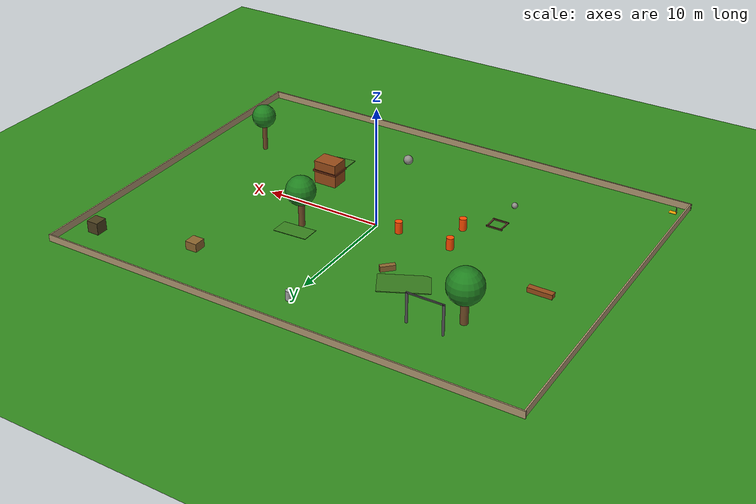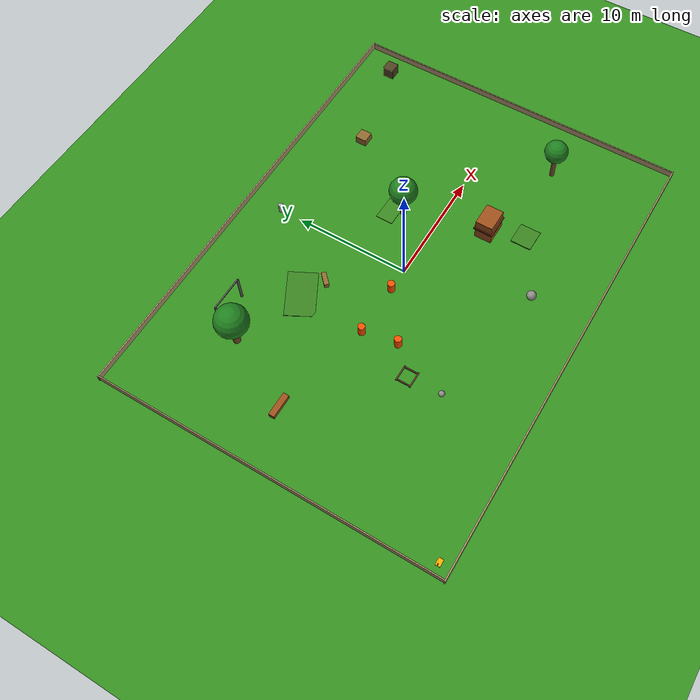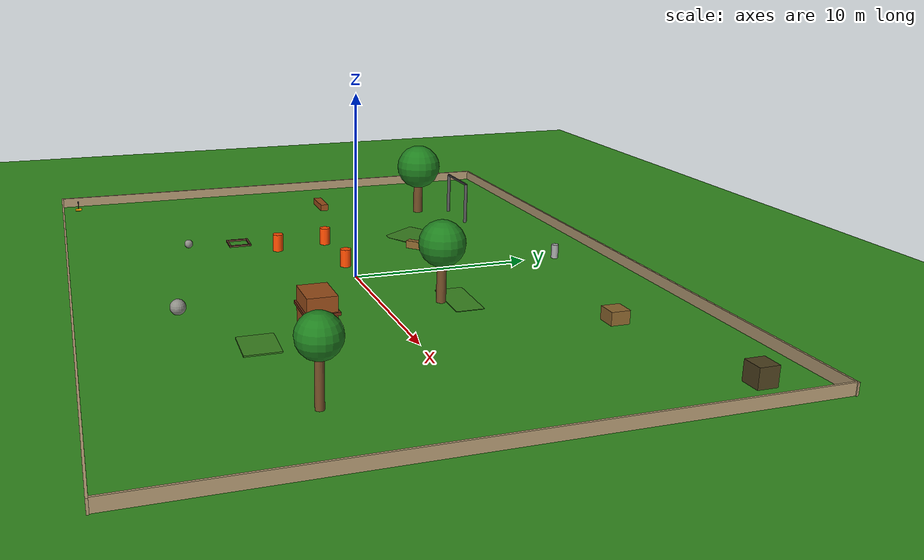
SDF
<?xml version="1.0"?>
<sdf version="1.9">
  <world name="garden">

    <!-- ================================================================
         Physics
         ================================================================ -->
    <physics name="default_physics" default="true" type="ode">
      <max_step_size>0.001</max_step_size>
      <real_time_factor>1.0</real_time_factor>
      <real_time_update_rate>1000</real_time_update_rate>
      <ode>
        <solver>
          <type>quick</type>
          <iters>150</iters>
          <sor>1.4</sor>
        </solver>
        <constraints>
          <cfm>0.0</cfm>
          <erp>0.2</erp>
          <contact_max_correcting_vel>10.0</contact_max_correcting_vel>
          <contact_surface_layer>0.001</contact_surface_layer>
        </constraints>
      </ode>
    </physics>

    <!-- ================================================================
         Required Ignition Fortress plugins
         ================================================================ -->
    <plugin filename="gz-sim-physics-system"
            name="gz::sim::systems::Physics"/>

    <plugin filename="gz-sim-user-commands-system"
            name="gz::sim::systems::UserCommands"/>

    <plugin filename="gz-sim-scene-broadcaster-system"
            name="gz::sim::systems::SceneBroadcaster"/>

    <plugin filename="gz-sim-contact-system"
            name="gz::sim::systems::Contact"/>

    <plugin filename="gz-sim-imu-system"
            name="gz::sim::systems::Imu"/>

    <plugin filename="gz-sim-navsat-system"
            name="gz::sim::systems::NavSat"/>

    <spherical_coordinates>
      <surface_model>EARTH_WGS84</surface_model>
      <world_frame_orientation>ENU</world_frame_orientation>
      <latitude_deg>48.137154</latitude_deg>
      <longitude_deg>11.576124</longitude_deg>
      <elevation>520.0</elevation>
      <heading_deg>0</heading_deg>
    </spherical_coordinates>

    <plugin filename="gz-sim-sensors-system"
            name="gz::sim::systems::Sensors">
      <render_engine>ogre2</render_engine>
    </plugin>

    <!-- ================================================================
         Lighting
         ================================================================ -->
    <light name="sun" type="directional">
      <cast_shadows>true</cast_shadows>
      <pose>0 0 10 0 0 0</pose>
      <diffuse>0.9 0.9 0.9 1</diffuse>
      <specular>0.3 0.3 0.3 1</specular>
      <direction>-0.5 0.1 -0.9</direction>
      <attenuation>
        <range>1000</range>
        <constant>0.9</constant>
        <linear>0.01</linear>
        <quadratic>0.001</quadratic>
      </attenuation>
    </light>

    <!-- Ambient sky -->
    <scene>
      <ambient>0.6 0.6 0.6 1.0</ambient>
      <background>0.53 0.81 0.92 1.0</background>
      <shadows>true</shadows>
    </scene>

    <!-- ================================================================
         Ground plane — grass texture (60 x 60 m)
         ================================================================ -->
    <model name="ground_plane">
      <static>true</static>
      <link name="link">
        <collision name="collision">
          <geometry>
            <plane>
              <normal>0 0 1</normal>
              <size>60 60</size>
            </plane>
          </geometry>
          <surface>
            <friction>
              <ode>
                <mu>0.8</mu>
                <mu2>0.8</mu2>
              </ode>
            </friction>
          </surface>
        </collision>
        <visual name="visual">
          <geometry>
            <plane>
              <normal>0 0 1</normal>
              <size>60 60</size>
            </plane>
          </geometry>
          <material>
            <ambient>0.18 0.45 0.10 1</ambient>
            <diffuse>0.20 0.55 0.12 1</diffuse>
            <specular>0.05 0.05 0.05 1</specular>
          </material>
        </visual>
      </link>
    </model>

    <!-- Mound 1 — low rise near (5, 4), 4 cm tall ramp -->
    <model name="mound_1">
      <static>true</static>
      <pose>5 4 0.02 0 0.04 0</pose>
      <link name="link">
        <collision name="collision">
          <geometry><box><size>3.0 1.5 0.04</size></box></geometry>
          <surface><friction><ode><mu>0.8</mu><mu2>0.8</mu2></ode></friction></surface>
        </collision>
        <visual name="visual">
          <geometry><box><size>3.0 1.5 0.04</size></box></geometry>
          <material><ambient>0.20 0.42 0.10 1</ambient><diffuse>0.22 0.52 0.12 1</diffuse></material>
        </visual>
      </link>
    </model>

    <!-- Mound 2 — broader rise near (-6, 6), 6 cm tall, tilted -->
    <model name="mound_2">
      <static>true</static>
      <pose>-6 6 0.03 0.05 -0.03 0.5</pose>
      <link name="link">
        <collision name="collision">
          <geometry><box><size>4.0 2.5 0.06</size></box></geometry>
          <surface><friction><ode><mu>0.8</mu><mu2>0.8</mu2></ode></friction></surface>
        </collision>
        <visual name="visual">
          <geometry><box><size>4.0 2.5 0.06</size></box></geometry>
          <material><ambient>0.18 0.40 0.10 1</ambient><diffuse>0.22 0.50 0.12 1</diffuse></material>
        </visual>
      </link>
    </model>

    <!-- Mound 3 — small hummock near (8, -7), 8 cm tall -->
    <model name="mound_3">
      <static>true</static>
      <pose>8 -7 0.04 0 0.06 0</pose>
      <link name="link">
        <collision name="collision">
          <geometry><box><size>2.0 1.8 0.08</size></box></geometry>
          <surface><friction><ode><mu>0.7</mu><mu2>0.7</mu2></ode></friction></surface>
        </collision>
        <visual name="visual">
          <geometry><box><size>2.0 1.8 0.08</size></box></geometry>
          <material><ambient>0.18 0.40 0.10 1</ambient><diffuse>0.22 0.50 0.12 1</diffuse></material>
        </visual>
      </link>
    </model>

    <model name="hazard_pit">
      <static>true</static>
      <pose>-8 -5 0 0 0 0</pose>
      <link name="wall_n">
        <pose>0 0.6 0.05 0 0 0</pose>
        <collision name="c"><geometry><box><size>1.4 0.1 0.10</size></box></geometry></collision>
        <visual name="v"><geometry><box><size>1.4 0.1 0.10</size></box></geometry>
          <material><ambient>0.30 0.20 0.15 1</ambient><diffuse>0.40 0.25 0.18 1</diffuse></material>
        </visual>
      </link>
      <link name="wall_s">
        <pose>0 -0.6 0.05 0 0 0</pose>
        <collision name="c"><geometry><box><size>1.4 0.1 0.10</size></box></geometry></collision>
        <visual name="v"><geometry><box><size>1.4 0.1 0.10</size></box></geometry>
          <material><ambient>0.30 0.20 0.15 1</ambient><diffuse>0.40 0.25 0.18 1</diffuse></material>
        </visual>
      </link>
      <link name="wall_e">
        <pose>0.6 0 0.05 0 0 0</pose>
        <collision name="c"><geometry><box><size>0.1 1.2 0.10</size></box></geometry></collision>
        <visual name="v"><geometry><box><size>0.1 1.2 0.10</size></box></geometry>
          <material><ambient>0.30 0.20 0.15 1</ambient><diffuse>0.40 0.25 0.18 1</diffuse></material>
        </visual>
      </link>
      <link name="wall_w">
        <pose>-0.6 0 0.05 0 0 0</pose>
        <collision name="c"><geometry><box><size>0.1 1.2 0.10</size></box></geometry></collision>
        <visual name="v"><geometry><box><size>0.1 1.2 0.10</size></box></geometry>
          <material><ambient>0.30 0.20 0.15 1</ambient><diffuse>0.40 0.25 0.18 1</diffuse></material>
        </visual>
      </link>
    </model>

    <!-- North wall  y = +15.0, runs along x -->
    <model name="wall_north">
      <static>true</static>
      <pose>0 15.0 0.30 0 0 0</pose>
      <link name="link">
        <collision name="collision">
          <geometry><box><size>40.2 0.1 0.6</size></box></geometry>
        </collision>
        <visual name="visual">
          <geometry><box><size>40.2 0.1 0.6</size></box></geometry>
          <material>
            <ambient>0.65 0.55 0.40 1</ambient>
            <diffuse>0.70 0.60 0.45 1</diffuse>
          </material>
        </visual>
      </link>
    </model>

    <!-- South wall  y = -15.0 -->
    <model name="wall_south">
      <static>true</static>
      <pose>0 -15.0 0.30 0 0 0</pose>
      <link name="link">
        <collision name="collision">
          <geometry><box><size>40.2 0.1 0.6</size></box></geometry>
        </collision>
        <visual name="visual">
          <geometry><box><size>40.2 0.1 0.6</size></box></geometry>
          <material>
            <ambient>0.65 0.55 0.40 1</ambient>
            <diffuse>0.70 0.60 0.45 1</diffuse>
          </material>
        </visual>
      </link>
    </model>

    <!-- West wall  x = -20.0 -->
    <model name="wall_west">
      <static>true</static>
      <pose>-20.0 0 0.30 0 0 1.5708</pose>
      <link name="link">
        <collision name="collision">
          <geometry><box><size>30.0 0.1 0.6</size></box></geometry>
        </collision>
        <visual name="visual">
          <geometry><box><size>30.0 0.1 0.6</size></box></geometry>
          <material>
            <ambient>0.65 0.55 0.40 1</ambient>
            <diffuse>0.70 0.60 0.45 1</diffuse>
          </material>
        </visual>
      </link>
    </model>

    <!-- East wall  x = +20.0 -->
    <model name="wall_east">
      <static>true</static>
      <pose>20.0 0 0.30 0 0 1.5708</pose>
      <link name="link">
        <collision name="collision">
          <geometry><box><size>30.0 0.1 0.6</size></box></geometry>
        </collision>
        <visual name="visual">
          <geometry><box><size>30.0 0.1 0.6</size></box></geometry>
          <material>
            <ambient>0.65 0.55 0.40 1</ambient>
            <diffuse>0.70 0.60 0.45 1</diffuse>
          </material>
        </visual>
      </link>
    </model>

    <model name="tree">
      <static>true</static>
      <pose>5.0 3.0 1.25 0 0 0</pose>
      <link name="trunk">
        <collision name="collision">
          <geometry>
            <cylinder><radius>0.25</radius><length>2.5</length></cylinder>
          </geometry>
        </collision>
        <visual name="visual">
          <geometry>
            <cylinder><radius>0.25</radius><length>2.5</length></cylinder>
          </geometry>
          <material>
            <ambient>0.40 0.26 0.13 1</ambient>
            <diffuse>0.45 0.30 0.15 1</diffuse>
          </material>
        </visual>
      </link>
      <!-- Canopy sphere (no collision — mower passes underneath) -->
      <link name="canopy">
        <pose>0 0 1.85 0 0 0</pose>
        <visual name="visual">
          <geometry>
            <sphere><radius>1.2</radius></sphere>
          </geometry>
          <material>
            <ambient>0.10 0.40 0.10 1</ambient>
            <diffuse>0.12 0.50 0.12 1</diffuse>
          </material>
        </visual>
        <!-- Lightweight inertial so link is valid -->
        <inertial>
          <mass>0.001</mass>
          <inertia><ixx>1e-6</ixx><ixy>0</ixy><ixz>0</ixz>
                   <iyy>1e-6</iyy><iyz>0</iyz><izz>1e-6</izz></inertia>
        </inertial>
      </link>
      <joint name="canopy_joint" type="fixed">
        <parent>trunk</parent>
        <child>canopy</child>
      </joint>
    </model>

    <model name="garden_bench">
      <static>true</static>
      <pose>-4.0 5.0 0.225 0 0 0.7854</pose>
      <link name="link">
        <collision name="collision">
          <geometry>
            <box><size>1.2 0.4 0.45</size></box>
          </geometry>
        </collision>
        <visual name="visual">
          <geometry>
            <box><size>1.2 0.4 0.45</size></box>
          </geometry>
          <material>
            <ambient>0.50 0.35 0.15 1</ambient>
            <diffuse>0.55 0.40 0.18 1</diffuse>
          </material>
        </visual>
      </link>
    </model>

    <model name="shed">
      <static>true</static>
      <pose>7.0 -4.0 1.0 0 0 0</pose>
      <link name="link">
        <collision name="collision">
          <geometry>
            <box><size>2.0 1.5 2.0</size></box>
          </geometry>
        </collision>
        <visual name="visual">
          <geometry>
            <box><size>2.0 1.5 2.0</size></box>
          </geometry>
          <material>
            <ambient>0.55 0.27 0.07 1</ambient>
            <diffuse>0.60 0.30 0.10 1</diffuse>
          </material>
        </visual>
      </link>
      <!-- Simple roof (visual only, pitched approximated as a flat overhang) -->
      <link name="roof">
        <pose>0 0 0.15 0 0 0</pose>
        <visual name="visual">
          <geometry>
            <box><size>2.2 1.7 0.15</size></box>
          </geometry>
          <material>
            <ambient>0.40 0.15 0.05 1</ambient>
            <diffuse>0.45 0.18 0.07 1</diffuse>
          </material>
        </visual>
        <inertial>
          <mass>0.001</mass>
          <inertia><ixx>1e-6</ixx><ixy>0</ixy><ixz>0</ixz>
                   <iyy>1e-6</iyy><iyz>0</iyz><izz>1e-6</izz></inertia>
        </inertial>
      </link>
      <joint name="roof_joint" type="fixed">
        <parent>link</parent>
        <child>roof</child>
      </joint>
    </model>

    <!-- Obstacle 4: Flower bed border — REMOVED (< 40cm, robot drives over) -->

    <model name="tree_2">
      <static>true</static>
      <pose>-12.0 8.0 1.25 0 0 0</pose>
      <link name="trunk">
        <collision name="collision">
          <geometry>
            <cylinder><radius>0.3</radius><length>2.5</length></cylinder>
          </geometry>
        </collision>
        <visual name="visual">
          <geometry>
            <cylinder><radius>0.3</radius><length>2.5</length></cylinder>
          </geometry>
          <material>
            <ambient>0.40 0.26 0.13 1</ambient>
            <diffuse>0.45 0.30 0.15 1</diffuse>
          </material>
        </visual>
      </link>
      <link name="canopy">
        <pose>0 0 1.85 0 0 0</pose>
        <visual name="visual">
          <geometry>
            <sphere><radius>1.4</radius></sphere>
          </geometry>
          <material>
            <ambient>0.10 0.40 0.10 1</ambient>
            <diffuse>0.12 0.50 0.12 1</diffuse>
          </material>
        </visual>
        <inertial>
          <mass>0.001</mass>
          <inertia><ixx>1e-6</ixx><ixy>0</ixy><ixz>0</ixz>
                   <iyy>1e-6</iyy><iyz>0</iyz><izz>1e-6</izz></inertia>
        </inertial>
      </link>
      <joint name="canopy_joint" type="fixed">
        <parent>trunk</parent>
        <child>canopy</child>
      </joint>
    </model>

    <model name="tree_3">
      <static>true</static>
      <pose>15.0 -6.0 1.25 0 0 0</pose>
      <link name="trunk">
        <collision name="collision">
          <geometry>
            <cylinder><radius>0.2</radius><length>2.5</length></cylinder>
          </geometry>
        </collision>
        <visual name="visual">
          <geometry>
            <cylinder><radius>0.2</radius><length>2.5</length></cylinder>
          </geometry>
          <material>
            <ambient>0.40 0.26 0.13 1</ambient>
            <diffuse>0.45 0.30 0.15 1</diffuse>
          </material>
        </visual>
      </link>
      <link name="canopy">
        <pose>0 0 1.85 0 0 0</pose>
        <visual name="visual">
          <geometry>
            <sphere><radius>1.0</radius></sphere>
          </geometry>
          <material>
            <ambient>0.10 0.40 0.10 1</ambient>
            <diffuse>0.12 0.50 0.12 1</diffuse>
          </material>
        </visual>
        <inertial>
          <mass>0.001</mass>
          <inertia><ixx>1e-6</ixx><ixy>0</ixy><ixz>0</ixz>
                   <iyy>1e-6</iyy><iyz>0</iyz><izz>1e-6</izz></inertia>
        </inertial>
      </link>
      <joint name="canopy_joint" type="fixed">
        <parent>trunk</parent>
        <child>canopy</child>
      </joint>
    </model>

    <model name="large_rock">
      <static>true</static>
      <pose>3.0 -10.0 0.4 0 0 0</pose>
      <link name="link">
        <collision name="collision">
          <geometry>
            <sphere><radius>0.4</radius></sphere>
          </geometry>
        </collision>
        <visual name="visual">
          <geometry>
            <sphere><radius>0.4</radius></sphere>
          </geometry>
          <material>
            <ambient>0.50 0.50 0.48 1</ambient>
            <diffuse>0.55 0.55 0.52 1</diffuse>
          </material>
        </visual>
      </link>
    </model>

    <model name="rock_cluster_a">
      <static>true</static>
      <pose>-8.0 -8.0 0.25 0 0 0</pose>
      <link name="link">
        <collision name="collision">
          <geometry>
            <sphere><radius>0.25</radius></sphere>
          </geometry>
        </collision>
        <visual name="visual">
          <geometry>
            <sphere><radius>0.25</radius></sphere>
          </geometry>
          <material>
            <ambient>0.50 0.50 0.48 1</ambient>
            <diffuse>0.55 0.55 0.52 1</diffuse>
          </material>
        </visual>
      </link>
    </model>

    <!-- rock_cluster_b (r=0.15) — REMOVED (< 40cm) -->
    <!-- rock_cluster_c (r=0.20) — REMOVED (< 40cm) -->

    <model name="garden_table">
      <static>true</static>
      <pose>10.0 10.0 0.35 0 0 0</pose>
      <link name="link">
        <collision name="collision">
          <geometry>
            <box><size>1.0 1.0 0.7</size></box>
          </geometry>
        </collision>
        <visual name="visual">
          <geometry>
            <box><size>1.0 1.0 0.7</size></box>
          </geometry>
          <material>
            <ambient>0.50 0.35 0.15 1</ambient>
            <diffuse>0.55 0.40 0.18 1</diffuse>
          </material>
        </visual>
      </link>
    </model>

    <model name="planter_box">
      <static>true</static>
      <pose>-15.0 2.0 0.2 0 0 0</pose>
      <link name="link">
        <collision name="collision">
          <geometry>
            <box><size>2.0 0.5 0.4</size></box>
          </geometry>
        </collision>
        <visual name="visual">
          <geometry>
            <box><size>2.0 0.5 0.4</size></box>
          </geometry>
          <material>
            <ambient>0.55 0.27 0.07 1</ambient>
            <diffuse>0.60 0.30 0.10 1</diffuse>
          </material>
        </visual>
      </link>
    </model>

    <model name="birdbath">
      <static>true</static>
      <pose>0.0 12.0 0.4 0 0 0</pose>
      <link name="link">
        <collision name="collision">
          <geometry>
            <cylinder><radius>0.2</radius><length>0.8</length></cylinder>
          </geometry>
        </collision>
        <visual name="visual">
          <geometry>
            <cylinder><radius>0.2</radius><length>0.8</length></cylinder>
          </geometry>
          <material>
            <ambient>0.60 0.60 0.60 1</ambient>
            <diffuse>0.65 0.65 0.65 1</diffuse>
          </material>
        </visual>
      </link>
    </model>

    <model name="compost_bin">
      <static>true</static>
      <pose>18.0 12.0 0.5 0 0 0</pose>
      <link name="link">
        <collision name="collision">
          <geometry>
            <box><size>1.0 1.0 1.0</size></box>
          </geometry>
        </collision>
        <visual name="visual">
          <geometry>
            <box><size>1.0 1.0 1.0</size></box>
          </geometry>
          <material>
            <ambient>0.25 0.20 0.10 1</ambient>
            <diffuse>0.30 0.25 0.12 1</diffuse>
          </material>
        </visual>
      </link>
    </model>

    <model name="swing_set">
      <static>true</static>
      <pose>-10.0 10.0 0 0 0 0</pose>
      <link name="post_left">
        <pose>-1.45 0 1.25 0 0 0</pose>
        <collision name="collision">
          <geometry>
            <cylinder><radius>0.1</radius><length>2.5</length></cylinder>
          </geometry>
        </collision>
        <visual name="visual">
          <geometry>
            <cylinder><radius>0.1</radius><length>2.5</length></cylinder>
          </geometry>
          <material>
            <ambient>0.30 0.30 0.30 1</ambient>
            <diffuse>0.35 0.35 0.35 1</diffuse>
          </material>
        </visual>
      </link>
      <link name="post_right">
        <pose>1.45 0 1.25 0 0 0</pose>
        <collision name="collision">
          <geometry>
            <cylinder><radius>0.1</radius><length>2.5</length></cylinder>
          </geometry>
        </collision>
        <visual name="visual">
          <geometry>
            <cylinder><radius>0.1</radius><length>2.5</length></cylinder>
          </geometry>
          <material>
            <ambient>0.30 0.30 0.30 1</ambient>
            <diffuse>0.35 0.35 0.35 1</diffuse>
          </material>
        </visual>
        <inertial>
          <mass>0.001</mass>
          <inertia><ixx>1e-6</ixx><ixy>0</ixy><ixz>0</ixz>
                   <iyy>1e-6</iyy><iyz>0</iyz><izz>1e-6</izz></inertia>
        </inertial>
      </link>
      <link name="crossbar">
        <pose>0 0 2.5 0 0 0</pose>
        <collision name="collision">
          <geometry>
            <box><size>3.0 0.1 0.1</size></box>
          </geometry>
        </collision>
        <visual name="visual">
          <geometry>
            <box><size>3.0 0.1 0.1</size></box>
          </geometry>
          <material>
            <ambient>0.30 0.30 0.30 1</ambient>
            <diffuse>0.35 0.35 0.35 1</diffuse>
          </material>
        </visual>
        <inertial>
          <mass>0.001</mass>
          <inertia><ixx>1e-6</ixx><ixy>0</ixy><ixz>0</ixz>
                   <iyy>1e-6</iyy><iyz>0</iyz><izz>1e-6</izz></inertia>
        </inertial>
      </link>
      <joint name="crossbar_joint" type="fixed">
        <parent>post_left</parent>
        <child>crossbar</child>
      </joint>
      <joint name="post_right_joint" type="fixed">
        <parent>post_left</parent>
        <child>post_right</child>
      </joint>
    </model>

    <!-- Obstacle 14: Sandbox — REMOVED (height 0.25m < 40cm, robot drives over) -->

    <model name="docking_station">
      <static>true</static>
      <pose>-19.0 -14.0 0.01 0 0 0</pose>
      <link name="base_plate">
        <collision name="collision">
          <geometry>
            <box><size>0.6 0.4 0.02</size></box>
          </geometry>
        </collision>
        <visual name="visual">
          <geometry>
            <box><size>0.6 0.4 0.02</size></box>
          </geometry>
          <material>
            <ambient>1.0 0.60 0.0 1</ambient>
            <diffuse>1.0 0.65 0.0 1</diffuse>
            <specular>0.3 0.3 0.1 1</specular>
          </material>
        </visual>
      </link>
      <!-- Upright charging post -->
      <link name="post">
        <pose>-0.25 0 0.25 0 0 0</pose>
        <collision name="collision">
          <geometry>
            <box><size>0.05 0.05 0.5</size></box>
          </geometry>
        </collision>
        <visual name="visual">
          <geometry>
            <box><size>0.05 0.05 0.5</size></box>
          </geometry>
          <material>
            <ambient>0.15 0.15 0.15 1</ambient>
            <diffuse>0.20 0.20 0.20 1</diffuse>
          </material>
        </visual>
        <inertial>
          <mass>0.001</mass>
          <inertia><ixx>1e-6</ixx><ixy>0</ixy><ixz>0</ixz>
                   <iyy>1e-6</iyy><iyz>0</iyz><izz>1e-6</izz></inertia>
        </inertial>
      </link>
      <joint name="post_joint" type="fixed">
        <parent>base_plate</parent>
        <child>post</child>
      </joint>
    </model>

    <!-- Test obstacles: cylinders for e2e coverage + obstacle avoidance testing.
         Placed on early swaths so the robot encounters them quickly. -->
    <model name="obs_swath1">
      <static>true</static>
      <pose>-6.5 0.0 0.5 0 0 0</pose>
      <link name="link">
        <collision name="c"><geometry><cylinder><radius>0.30</radius><length>1.0</length></cylinder></geometry></collision>
        <visual name="v"><geometry><cylinder><radius>0.30</radius><length>1.0</length></cylinder></geometry>
          <material><ambient>1 0.3 0 1</ambient><diffuse>1 0.3 0 1</diffuse></material></visual>
      </link>
    </model>
    <model name="obs_swath2">
      <static>true</static>
      <pose>-6.0 -3.0 0.5 0 0 0</pose>
      <link name="link">
        <collision name="c"><geometry><cylinder><radius>0.30</radius><length>1.0</length></cylinder></geometry></collision>
        <visual name="v"><geometry><cylinder><radius>0.30</radius><length>1.0</length></cylinder></geometry>
          <material><ambient>1 0.3 0 1</ambient><diffuse>1 0.3 0 1</diffuse></material></visual>
      </link>
    </model>
    <model name="obs_mid">
      <static>true</static>
      <pose>-2.0 0.0 0.5 0 0 0</pose>
      <link name="link">
        <collision name="c"><geometry><cylinder><radius>0.30</radius><length>1.0</length></cylinder></geometry></collision>
        <visual name="v"><geometry><cylinder><radius>0.30</radius><length>1.0</length></cylinder></geometry>
          <material><ambient>1 0.3 0 1</ambient><diffuse>1 0.3 0 1</diffuse></material></visual>
      </link>
    </model>

  </world>
</sdf>
